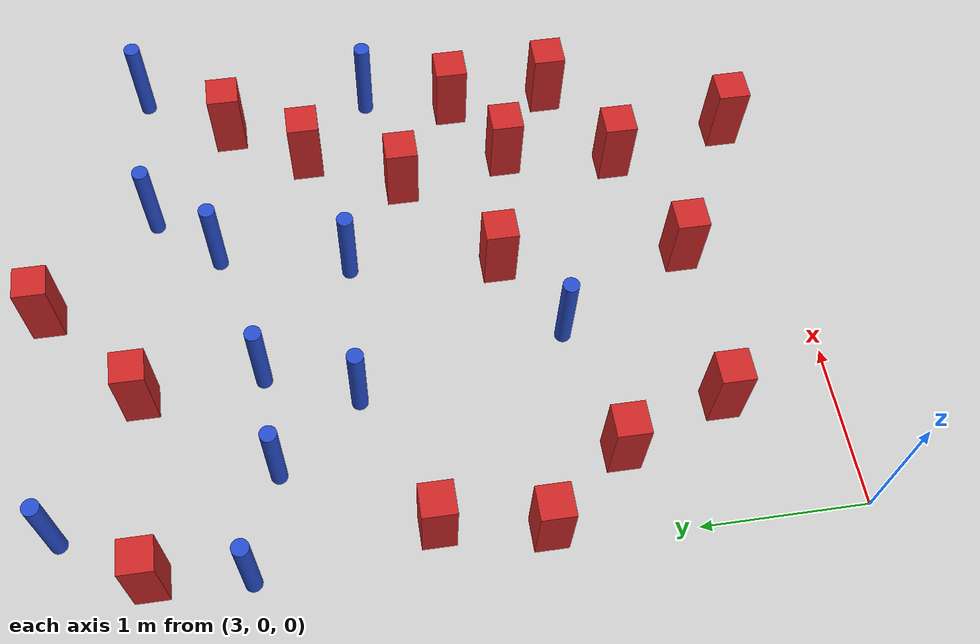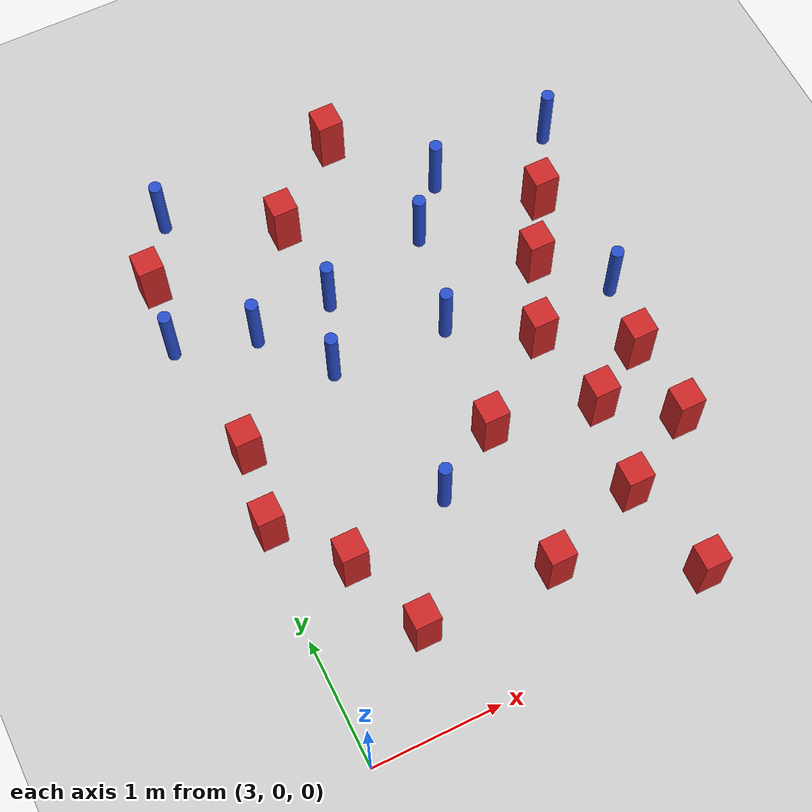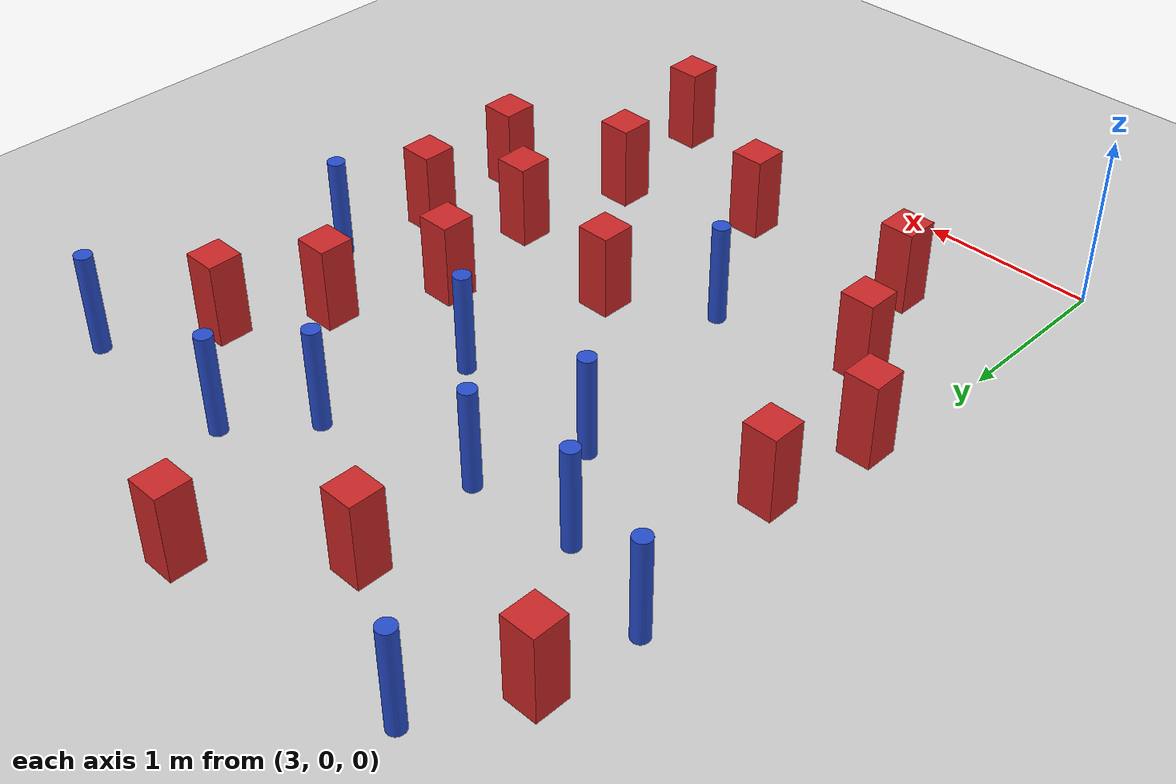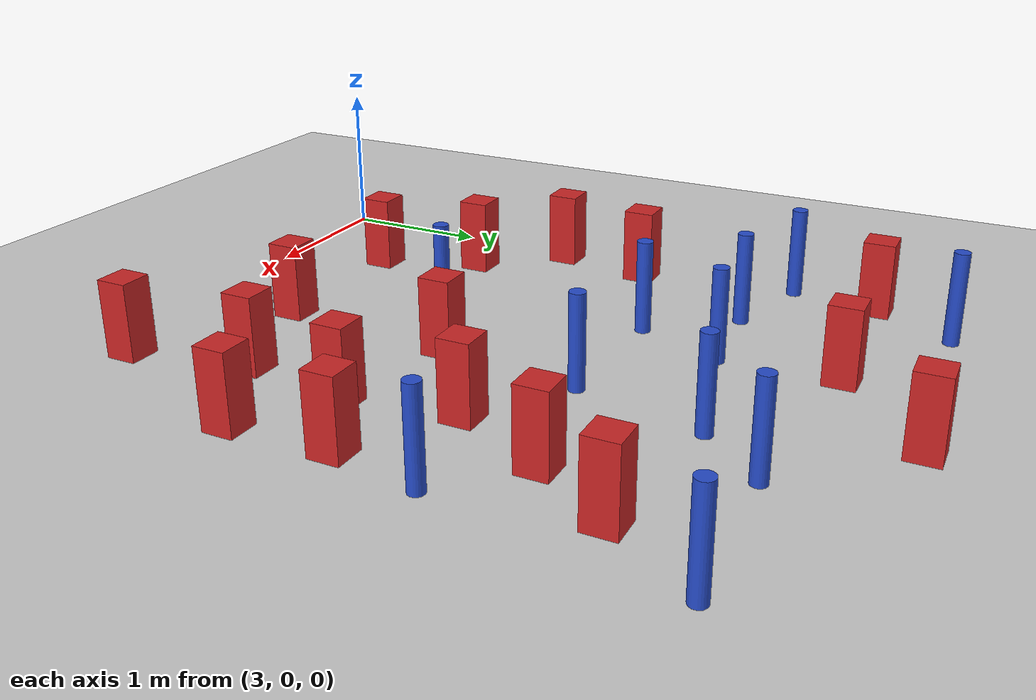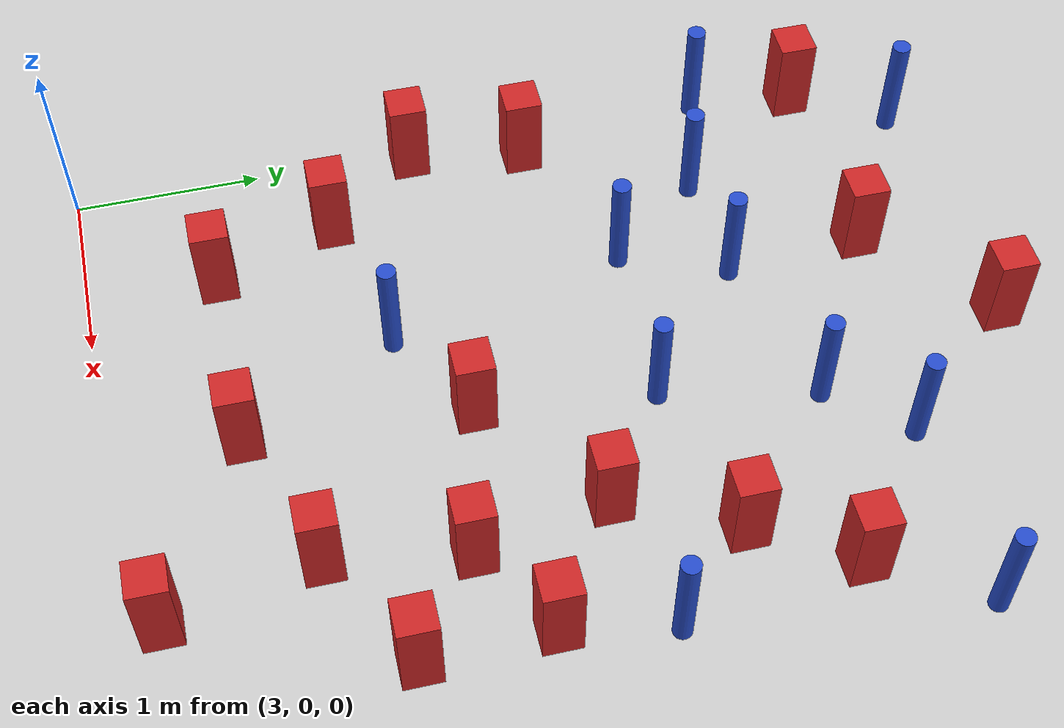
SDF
<sdf version="1.6">
 <world name="default">
  <model name="ground_plane">
   <static>1</static>
   <link name="link">
    <collision name="collision">
     <geometry><plane><normal>0 0 1</normal><size>100 100</size></plane></geometry>
     <surface><friction><ode><mu>100</mu><mu2>50</mu2></ode></friction></surface>
    </collision>
    <visual name="visual">
     <cast_shadows>0</cast_shadows>
     <geometry><plane><normal>0 0 1</normal><size>100 100</size></plane></geometry>
     <material>
      <ambient>1.0 1.0 1.0 1.0</ambient>
      <diffuse>0.8 0.8 0.8 1.0</diffuse>
      <specular>0.01 0.01 0.01 1.000000</specular>
     </material>
    </visual>
   </link>
  </model>
  <model name="square_post_obstacle6">
   <static>true</static>
   <pose>5.55854668269 0.973483236023 8.22691968438e-08 7.2212513382e-06 -7.54495500217e-07 2.29674213826e-05</pose>
   <link name="link">
    <pose>0 0 0.25 0 -0 0</pose>
    <inertial>
     <mass>100</mass>
     <inertia>
      <ixx>0.166667</ixx>
      <ixy>0</ixy>
      <ixz>0</ixz>
      <iyy>0.166667</iyy>
      <iyz>0</iyz>
      <izz>0.166667</izz>
     </inertia>
    </inertial>
    <collision name="collision"><geometry><box><size>.2 .2 .5</size></box></geometry></collision>
    <visual name="visual">
     <geometry><box><size>.2 .2 .5</size></box></geometry>
     <material>
      <script><name>Gazebo/Red</name><uri>file://media/materials/scripts/gazebo.material</uri></script>
     </material>
    </visual>
   </link>
  </model>
  <model name="square_post_obstacle21">
   <static>true</static>
   <pose>4.86648142705 1.85375109788 8.22691968438e-08 7.2212513382e-06 -7.54495500217e-07 2.29674213826e-05</pose>
   <link name="link">
    <pose>0 0 0.25 0 -0 0</pose>
    <inertial>
     <mass>100</mass>
     <inertia>
      <ixx>0.166667</ixx>
      <ixy>0</ixy>
      <ixz>0</ixz>
      <iyy>0.166667</iyy>
      <iyz>0</iyz>
      <izz>0.166667</izz>
     </inertia>
    </inertial>
    <collision name="collision"><geometry><box><size>.2 .2 .5</size></box></geometry></collision>
    <visual name="visual">
     <geometry><box><size>.2 .2 .5</size></box></geometry>
     <material>
      <script><name>Gazebo/Red</name><uri>file://media/materials/scripts/gazebo.material</uri></script>
     </material>
    </visual>
   </link>
  </model>
  <model name="square_post_obstacle32">
   <static>true</static>
   <pose>4.78458137741 0.69521827296 8.22691968438e-08 7.2212513382e-06 -7.54495500217e-07 2.29674213826e-05</pose>
   <link name="link">
    <pose>0 0 0.25 0 -0 0</pose>
    <inertial>
     <mass>100</mass>
     <inertia>
      <ixx>0.166667</ixx>
      <ixy>0</ixy>
      <ixz>0</ixz>
      <iyy>0.166667</iyy>
      <iyz>0</iyz>
      <izz>0.166667</izz>
     </inertia>
    </inertial>
    <collision name="collision"><geometry><box><size>.2 .2 .5</size></box></geometry></collision>
    <visual name="visual">
     <geometry><box><size>.2 .2 .5</size></box></geometry>
     <material>
      <script><name>Gazebo/Red</name><uri>file://media/materials/scripts/gazebo.material</uri></script>
     </material>
    </visual>
   </link>
  </model>
  <model name="pole_obstacle43">
   <static>true</static>
   <pose>4.33066802373 1.53504363595 2.88873142074e-08 -9.90536689445e-09 4.60219948999e-07 -1.20965994956e-07</pose>
   <link name="link">
    <pose>0 0 0.3 0 -0 0</pose>
    <inertial>
     <mass>1</mass>
     <inertia><ixx>0.145833</ixx><ixy>0</ixy><ixz>0</ixz><iyy>0.145833</iyy><iyz>0</iyz><izz>0.125</izz></inertia>
    </inertial>
    <collision name="collision">
     <geometry><cylinder><radius>0.05</radius><length>.6</length></cylinder></geometry>
    </collision>
    <visual name="visual">
     <geometry><cylinder><radius>0.05</radius><length>.6</length></cylinder></geometry>
     <material>
      <script><name>Gazebo/Blue</name><uri>file://media/materials/scripts/gazebo.material</uri></script>
     </material>
    </visual>
   </link>
  </model>
  <model name="pole_obstacle46">
   <static>true</static>
   <pose>4.96782453727 2.78345421204 2.88873142074e-08 -9.90536690245e-09 4.6021994898e-07 -1.20965994966e-07</pose>
   <link name="link">
    <pose>0 0 0.3 0 -0 0</pose>
    <inertial>
     <mass>1</mass>
     <inertia><ixx>0.145833</ixx><ixy>0</ixy><ixz>0</ixz><iyy>0.145833</iyy><iyz>0</iyz><izz>0.125</izz></inertia>
    </inertial>
    <collision name="collision">
     <geometry><cylinder><radius>0.05</radius><length>.6</length></cylinder></geometry>
    </collision>
    <visual name="visual">
     <geometry><cylinder><radius>0.05</radius><length>.6</length></cylinder></geometry>
     <material>
      <script><name>Gazebo/Blue</name><uri>file://media/materials/scripts/gazebo.material</uri></script>
     </material>
    </visual>
   </link>
  </model>
  <model name="pole_obstacle60">
   <static>true</static>
   <pose>4.04594409541 2.82158873041 2.88873142074e-08 -9.90536689988e-09 4.60219948986e-07 -1.20965994963e-07</pose>
   <link name="link">
    <pose>0 0 0.3 0 -0 0</pose>
    <inertial>
     <mass>1</mass>
     <inertia><ixx>0.145833</ixx><ixy>0</ixy><ixz>0</ixz><iyy>0.145833</iyy><iyz>0</iyz><izz>0.125</izz></inertia>
    </inertial>
    <collision name="collision">
     <geometry><cylinder><radius>0.05</radius><length>.6</length></cylinder></geometry>
    </collision>
    <visual name="visual">
     <geometry><cylinder><radius>0.05</radius><length>.6</length></cylinder></geometry>
     <material>
      <script><name>Gazebo/Blue</name><uri>file://media/materials/scripts/gazebo.material</uri></script>
     </material>
    </visual>
   </link>
  </model>
  <model name="pole_obstacle64">
   <static>true</static>
   <pose>4.26929395056 3.37781181993 2.88873142074e-08 -9.90536690245e-09 4.6021994898e-07 -1.20965994966e-07</pose>
   <link name="link">
    <pose>0 0 0.3 0 -0 0</pose>
    <inertial>
     <mass>1</mass>
     <inertia><ixx>0.145833</ixx><ixy>0</ixy><ixz>0</ixz><iyy>0.145833</iyy><iyz>0</iyz><izz>0.125</izz></inertia>
    </inertial>
    <collision name="collision">
     <geometry><cylinder><radius>0.05</radius><length>.6</length></cylinder></geometry>
    </collision>
    <visual name="visual">
     <geometry><cylinder><radius>0.05</radius><length>.6</length></cylinder></geometry>
     <material>
      <script><name>Gazebo/Blue</name><uri>file://media/materials/scripts/gazebo.material</uri></script>
     </material>
    </visual>
   </link>
  </model>
  <model name="square_post_obstacle66">
   <static>true</static>
   <pose>5.83641155961 2.9767723588 8.22691968438e-08 7.2212513382e-06 -7.54495500217e-07 2.29674213826e-05</pose>
   <link name="link">
    <pose>0 0 0.25 0 -0 0</pose>
    <inertial>
     <mass>100</mass>
     <inertia>
      <ixx>0.166667</ixx>
      <ixy>0</ixy>
      <ixz>0</ixz>
      <iyy>0.166667</iyy>
      <iyz>0</iyz>
      <izz>0.166667</izz>
     </inertia>
    </inertial>
    <collision name="collision"><geometry><box><size>.2 .2 .5</size></box></geometry></collision>
    <visual name="visual">
     <geometry><box><size>.2 .2 .5</size></box></geometry>
     <material>
      <script><name>Gazebo/Red</name><uri>file://media/materials/scripts/gazebo.material</uri></script>
     </material>
    </visual>
   </link>
  </model>
  <model name="square_post_obstacle76">
   <static>true</static>
   <pose>6.13826692928 3.46695634229 8.22691968438e-08 7.2212513382e-06 -7.54495500217e-07 2.29674213826e-05</pose>
   <link name="link">
    <pose>0 0 0.25 0 -0 0</pose>
    <inertial>
     <mass>100</mass>
     <inertia>
      <ixx>0.166667</ixx>
      <ixy>0</ixy>
      <ixz>0</ixz>
      <iyy>0.166667</iyy>
      <iyz>0</iyz>
      <izz>0.166667</izz>
     </inertia>
    </inertial>
    <collision name="collision"><geometry><box><size>.2 .2 .5</size></box></geometry></collision>
    <visual name="visual">
     <geometry><box><size>.2 .2 .5</size></box></geometry>
     <material>
      <script><name>Gazebo/Red</name><uri>file://media/materials/scripts/gazebo.material</uri></script>
     </material>
    </visual>
   </link>
  </model>
  <model name="square_post_obstacle79">
   <static>true</static>
   <pose>3.08541167611 1.85532679713 8.22691968438e-08 7.2212513382e-06 -7.54495500217e-07 2.29674213826e-05</pose>
   <link name="link">
    <pose>0 0 0.25 0 -0 0</pose>
    <inertial>
     <mass>100</mass>
     <inertia>
      <ixx>0.166667</ixx>
      <ixy>0</ixy>
      <ixz>0</ixz>
      <iyy>0.166667</iyy>
      <iyz>0</iyz>
      <izz>0.166667</izz>
     </inertia>
    </inertial>
    <collision name="collision"><geometry><box><size>.2 .2 .5</size></box></geometry></collision>
    <visual name="visual">
     <geometry><box><size>.2 .2 .5</size></box></geometry>
     <material>
      <script><name>Gazebo/Red</name><uri>file://media/materials/scripts/gazebo.material</uri></script>
     </material>
    </visual>
   </link>
  </model>
  <model name="square_post_obstacle80">
   <static>true</static>
   <pose>5.54754099378 2.38069353637 8.22691968438e-08 7.2212513382e-06 -7.54495500217e-07 2.29674213826e-05</pose>
   <link name="link">
    <pose>0 0 0.25 0 -0 0</pose>
    <inertial>
     <mass>100</mass>
     <inertia>
      <ixx>0.166667</ixx>
      <ixy>0</ixy>
      <ixz>0</ixz>
      <iyy>0.166667</iyy>
      <iyz>0</iyz>
      <izz>0.166667</izz>
     </inertia>
    </inertial>
    <collision name="collision"><geometry><box><size>.2 .2 .5</size></box></geometry></collision>
    <visual name="visual">
     <geometry><box><size>.2 .2 .5</size></box></geometry>
     <material>
      <script><name>Gazebo/Red</name><uri>file://media/materials/scripts/gazebo.material</uri></script>
     </material>
    </visual>
   </link>
  </model>
  <model name="square_post_obstacle87">
   <static>true</static>
   <pose>3.18703764535 2.47809150173 8.22691968438e-08 7.2212513382e-06 -7.54495500217e-07 2.29674213826e-05</pose>
   <link name="link">
    <pose>0 0 0.25 0 -0 0</pose>
    <inertial>
     <mass>100</mass>
     <inertia>
      <ixx>0.166667</ixx>
      <ixy>0</ixy>
      <ixz>0</ixz>
      <iyy>0.166667</iyy>
      <iyz>0</iyz>
      <izz>0.166667</izz>
     </inertia>
    </inertial>
    <collision name="collision"><geometry><box><size>.2 .2 .5</size></box></geometry></collision>
    <visual name="visual">
     <geometry><box><size>.2 .2 .5</size></box></geometry>
     <material>
      <script><name>Gazebo/Red</name><uri>file://media/materials/scripts/gazebo.material</uri></script>
     </material>
    </visual>
   </link>
  </model>
  <model name="square_post_obstacle92">
   <static>true</static>
   <pose>6.17946330299 1.31942860244 8.22691968438e-08 7.2212513382e-06 -7.54495500217e-07 2.29674213826e-05</pose>
   <link name="link">
    <pose>0 0 0.25 0 -0 0</pose>
    <inertial>
     <mass>100</mass>
     <inertia>
      <ixx>0.166667</ixx>
      <ixy>0</ixy>
      <ixz>0</ixz>
      <iyy>0.166667</iyy>
      <iyz>0</iyz>
      <izz>0.166667</izz>
     </inertia>
    </inertial>
    <collision name="collision"><geometry><box><size>.2 .2 .5</size></box></geometry></collision>
    <visual name="visual">
     <geometry><box><size>.2 .2 .5</size></box></geometry>
     <material>
      <script><name>Gazebo/Red</name><uri>file://media/materials/scripts/gazebo.material</uri></script>
     </material>
    </visual>
   </link>
  </model>
  <model name="square_post_obstacle93">
   <static>true</static>
   <pose>4.85743162066 4.66661174489 8.22691968438e-08 7.2212513382e-06 -7.54495500217e-07 2.29674213826e-05</pose>
   <link name="link">
    <pose>0 0 0.25 0 -0 0</pose>
    <inertial>
     <mass>100</mass>
     <inertia>
      <ixx>0.166667</ixx>
      <ixy>0</ixy>
      <ixz>0</ixz>
      <iyy>0.166667</iyy>
      <iyz>0</iyz>
      <izz>0.166667</izz>
     </inertia>
    </inertial>
    <collision name="collision"><geometry><box><size>.2 .2 .5</size></box></geometry></collision>
    <visual name="visual">
     <geometry><box><size>.2 .2 .5</size></box></geometry>
     <material>
      <script><name>Gazebo/Red</name><uri>file://media/materials/scripts/gazebo.material</uri></script>
     </material>
    </visual>
   </link>
  </model>
  <model name="pole_obstacle107">
   <static>true</static>
   <pose>3.02768697194 3.52371098499 2.88873142074e-08 -9.90536690232e-09 4.6021994898e-07 -1.20965994968e-07</pose>
   <link name="link">
    <pose>0 0 0.3 0 -0 0</pose>
    <inertial>
     <mass>1</mass>
     <inertia><ixx>0.145833</ixx><ixy>0</ixy><ixz>0</ixz><iyy>0.145833</iyy><iyz>0</iyz><izz>0.125</izz></inertia>
    </inertial>
    <collision name="collision">
     <geometry><cylinder><radius>0.05</radius><length>.6</length></cylinder></geometry>
    </collision>
    <visual name="visual">
     <geometry><cylinder><radius>0.05</radius><length>.6</length></cylinder></geometry>
     <material>
      <script><name>Gazebo/Blue</name><uri>file://media/materials/scripts/gazebo.material</uri></script>
     </material>
    </visual>
   </link>
  </model>
  <model name="square_post_obstacle110">
   <static>true</static>
   <pose>5.72329694684 0.19433244433 8.22691968438e-08 7.2212513382e-06 -7.54495500217e-07 2.29674213826e-05</pose>
   <link name="link">
    <pose>0 0 0.25 0 -0 0</pose>
    <inertial>
     <mass>100</mass>
     <inertia>
      <ixx>0.166667</ixx>
      <ixy>0</ixy>
      <ixz>0</ixz>
      <iyy>0.166667</iyy>
      <iyz>0</iyz>
      <izz>0.166667</izz>
     </inertia>
    </inertial>
    <collision name="collision"><geometry><box><size>.2 .2 .5</size></box></geometry></collision>
    <visual name="visual">
     <geometry><box><size>.2 .2 .5</size></box></geometry>
     <material>
      <script><name>Gazebo/Red</name><uri>file://media/materials/scripts/gazebo.material</uri></script>
     </material>
    </visual>
   </link>
  </model>
  <model name="square_post_obstacle116">
   <static>true</static>
   <pose>4.21566400997 4.1073040141 8.22691968438e-08 7.2212513382e-06 -7.54495500217e-07 2.29674213826e-05</pose>
   <link name="link">
    <pose>0 0 0.25 0 -0 0</pose>
    <inertial>
     <mass>100</mass>
     <inertia>
      <ixx>0.166667</ixx>
      <ixy>0</ixy>
      <ixz>0</ixz>
      <iyy>0.166667</iyy>
      <iyz>0</iyz>
      <izz>0.166667</izz>
     </inertia>
    </inertial>
    <collision name="collision"><geometry><box><size>.2 .2 .5</size></box></geometry></collision>
    <visual name="visual">
     <geometry><box><size>.2 .2 .5</size></box></geometry>
     <material>
      <script><name>Gazebo/Red</name><uri>file://media/materials/scripts/gazebo.material</uri></script>
     </material>
    </visual>
   </link>
  </model>
  <model name="square_post_obstacle117">
   <static>true</static>
   <pose>3.73781608491 0.698578922526 8.22691968438e-08 7.2212513382e-06 -7.54495500217e-07 2.29674213826e-05</pose>
   <link name="link">
    <pose>0 0 0.25 0 -0 0</pose>
    <inertial>
     <mass>100</mass>
     <inertia>
      <ixx>0.166667</ixx>
      <ixy>0</ixy>
      <ixz>0</ixz>
      <iyy>0.166667</iyy>
      <iyz>0</iyz>
      <izz>0.166667</izz>
     </inertia>
    </inertial>
    <collision name="collision"><geometry><box><size>.2 .2 .5</size></box></geometry></collision>
    <visual name="visual">
     <geometry><box><size>.2 .2 .5</size></box></geometry>
     <material>
      <script><name>Gazebo/Red</name><uri>file://media/materials/scripts/gazebo.material</uri></script>
     </material>
    </visual>
   </link>
  </model>
  <model name="pole_obstacle120">
   <static>true</static>
   <pose>6.27464553563 2.53815864231 2.88873142074e-08 -9.90536690245e-09 4.6021994898e-07 -1.20965994966e-07</pose>
   <link name="link">
    <pose>0 0 0.3 0 -0 0</pose>
    <inertial>
     <mass>1</mass>
     <inertia><ixx>0.145833</ixx><ixy>0</ixy><ixz>0</ixz><iyy>0.145833</iyy><iyz>0</iyz><izz>0.125</izz></inertia>
    </inertial>
    <collision name="collision">
     <geometry><cylinder><radius>0.05</radius><length>.6</length></cylinder></geometry>
    </collision>
    <visual name="visual">
     <geometry><cylinder><radius>0.05</radius><length>.6</length></cylinder></geometry>
     <material>
      <script><name>Gazebo/Blue</name><uri>file://media/materials/scripts/gazebo.material</uri></script>
     </material>
    </visual>
   </link>
  </model>
  <model name="pole_obstacle134">
   <static>true</static>
   <pose>5.48053169003 3.98501624725 2.88873142074e-08 -9.9053669014e-09 4.60219948982e-07 -1.20965994965e-07</pose>
   <link name="link">
    <pose>0 0 0.3 0 -0 0</pose>
    <inertial>
     <mass>1</mass>
     <inertia><ixx>0.145833</ixx><ixy>0</ixy><ixz>0</ixz><iyy>0.145833</iyy><iyz>0</iyz><izz>0.125</izz></inertia>
    </inertial>
    <collision name="collision">
     <geometry><cylinder><radius>0.05</radius><length>.6</length></cylinder></geometry>
    </collision>
    <visual name="visual">
     <geometry><cylinder><radius>0.05</radius><length>.6</length></cylinder></geometry>
     <material>
      <script><name>Gazebo/Blue</name><uri>file://media/materials/scripts/gazebo.material</uri></script>
     </material>
    </visual>
   </link>
  </model>
  <model name="square_post_obstacle144">
   <static>true</static>
   <pose>5.67989755165 1.68259536944 8.22691968438e-08 7.2212513382e-06 -7.54495500217e-07 2.29674213826e-05</pose>
   <link name="link">
    <pose>0 0 0.25 0 -0 0</pose>
    <inertial>
     <mass>100</mass>
     <inertia>
      <ixx>0.166667</ixx>
      <ixy>0</ixy>
      <ixz>0</ixz>
      <iyy>0.166667</iyy>
      <iyz>0</iyz>
      <izz>0.166667</izz>
     </inertia>
    </inertial>
    <collision name="collision"><geometry><box><size>.2 .2 .5</size></box></geometry></collision>
    <visual name="visual">
     <geometry><box><size>.2 .2 .5</size></box></geometry>
     <material>
      <script><name>Gazebo/Red</name><uri>file://media/materials/scripts/gazebo.material</uri></script>
     </material>
    </visual>
   </link>
  </model>
  <model name="pole_obstacle168">
   <static>true</static>
   <pose>3.64106215783 3.33571791473 2.88873142074e-08 -9.90536690232e-09 4.6021994898e-07 -1.20965994968e-07</pose>
   <link name="link">
    <pose>0 0 0.3 0 -0 0</pose>
    <inertial>
     <mass>1</mass>
     <inertia><ixx>0.145833</ixx><ixy>0</ixy><ixz>0</ixz><iyy>0.145833</iyy><iyz>0</iyz><izz>0.125</izz></inertia>
    </inertial>
    <collision name="collision">
     <geometry><cylinder><radius>0.05</radius><length>.6</length></cylinder></geometry>
    </collision>
    <visual name="visual">
     <geometry><cylinder><radius>0.05</radius><length>.6</length></cylinder></geometry>
     <material>
      <script><name>Gazebo/Blue</name><uri>file://media/materials/scripts/gazebo.material</uri></script>
     </material>
    </visual>
   </link>
  </model>
  <model name="square_post_obstacle167">
   <static>true</static>
   <pose>3.49828076364 1.35198143566 8.22691968438e-08 7.2212513382e-06 -7.54495500217e-07 2.29674213826e-05</pose>
   <link name="link">
    <pose>0 0 0.25 0 -0 0</pose>
    <inertial>
     <mass>100</mass>
     <inertia>
      <ixx>0.166667</ixx>
      <ixy>0</ixy>
      <ixz>0</ixz>
      <iyy>0.166667</iyy>
      <iyz>0</iyz>
      <izz>0.166667</izz>
     </inertia>
    </inertial>
    <collision name="collision"><geometry><box><size>.2 .2 .5</size></box></geometry></collision>
    <visual name="visual">
     <geometry><box><size>.2 .2 .5</size></box></geometry>
     <material>
      <script><name>Gazebo/Red</name><uri>file://media/materials/scripts/gazebo.material</uri></script>
     </material>
    </visual>
   </link>
  </model>
  <model name="pole_obstacle173">
   <static>true</static>
   <pose>3.39704625506 4.59385779269 2.88873142074e-08 -9.90536689859e-09 4.60219948989e-07 -1.20965994961e-07</pose>
   <link name="link">
    <pose>0 0 0.3 0 -0 0</pose>
    <inertial>
     <mass>1</mass>
     <inertia><ixx>0.145833</ixx><ixy>0</ixy><ixz>0</ixz><iyy>0.145833</iyy><iyz>0</iyz><izz>0.125</izz></inertia>
    </inertial>
    <collision name="collision">
     <geometry><cylinder><radius>0.05</radius><length>.6</length></cylinder></geometry>
    </collision>
    <visual name="visual">
     <geometry><cylinder><radius>0.05</radius><length>.6</length></cylinder></geometry>
     <material>
      <script><name>Gazebo/Blue</name><uri>file://media/materials/scripts/gazebo.material</uri></script>
     </material>
    </visual>
   </link>
  </model>
  <model name="pole_obstacle179">
   <static>true</static>
   <pose>6.47791747611 4.01715542648 2.88873142074e-08 -9.90536690763e-09 4.60219948967e-07 -1.20965994975e-07</pose>
   <link name="link">
    <pose>0 0 0.3 0 -0 0</pose>
    <inertial>
     <mass>1</mass>
     <inertia><ixx>0.145833</ixx><ixy>0</ixy><ixz>0</ixz><iyy>0.145833</iyy><iyz>0</iyz><izz>0.125</izz></inertia>
    </inertial>
    <collision name="collision">
     <geometry><cylinder><radius>0.05</radius><length>.6</length></cylinder></geometry>
    </collision>
    <visual name="visual">
     <geometry><cylinder><radius>0.05</radius><length>.6</length></cylinder></geometry>
     <material>
      <script><name>Gazebo/Blue</name><uri>file://media/materials/scripts/gazebo.material</uri></script>
     </material>
    </visual>
   </link>
  </model>
  <model name="square_post_obstacle193">
   <static>true</static>
   <pose>3.1002479262 4.079292953 8.22691968438e-08 7.22125133819e-06 -7.54495500217e-07 2.29674213826e-05</pose>
   <link name="link">
    <pose>0 0 0.25 0 -0 0</pose>
    <inertial>
     <mass>100</mass>
     <inertia>
      <ixx>0.166667</ixx>
      <ixy>0</ixy>
      <ixz>0</ixz>
      <iyy>0.166667</iyy>
      <iyz>0</iyz>
      <izz>0.166667</izz>
     </inertia>
    </inertial>
    <collision name="collision"><geometry><box><size>.2 .2 .5</size></box></geometry></collision>
    <visual name="visual">
     <geometry><box><size>.2 .2 .5</size></box></geometry>
     <material>
      <script><name>Gazebo/Red</name><uri>file://media/materials/scripts/gazebo.material</uri></script>
     </material>
    </visual>
   </link>
  </model>
  <model name="pole_obstacle208">
   <static>true</static>
   <pose>5.14629279561 3.5961895284 2.88873142074e-08 -9.90536690245e-09 4.6021994898e-07 -1.20965994966e-07</pose>
   <link name="link">
    <pose>0 0 0.3 0 -0 0</pose>
    <inertial>
     <mass>1</mass>
     <inertia><ixx>0.145833</ixx><ixy>0</ixy><ixz>0</ixz><iyy>0.145833</iyy><iyz>0</iyz><izz>0.125</izz></inertia>
    </inertial>
    <collision name="collision">
     <geometry><cylinder><radius>0.05</radius><length>.6</length></cylinder></geometry>
    </collision>
    <visual name="visual">
     <geometry><cylinder><radius>0.05</radius><length>.6</length></cylinder></geometry>
     <material>
      <script><name>Gazebo/Blue</name><uri>file://media/materials/scripts/gazebo.material</uri></script>
     </material>
    </visual>
   </link>
  </model>
  <model name="square_post_obstacle216">
   <static>true</static>
   <pose>6.15785003262 1.97567996466 8.22691968438e-08 7.2212513382e-06 -7.54495500217e-07 2.29674213826e-05</pose>
   <link name="link">
    <pose>0 0 0.25 0 -0 0</pose>
    <inertial>
     <mass>100</mass>
     <inertia>
      <ixx>0.166667</ixx>
      <ixy>0</ixy>
      <ixz>0</ixz>
      <iyy>0.166667</iyy>
      <iyz>0</iyz>
      <izz>0.166667</izz>
     </inertia>
    </inertial>
    <collision name="collision"><geometry><box><size>.2 .2 .5</size></box></geometry></collision>
    <visual name="visual">
     <geometry><box><size>.2 .2 .5</size></box></geometry>
     <material>
      <script><name>Gazebo/Red</name><uri>file://media/materials/scripts/gazebo.material</uri></script>
     </material>
    </visual>
   </link>
  </model>
 </world>
</sdf>
